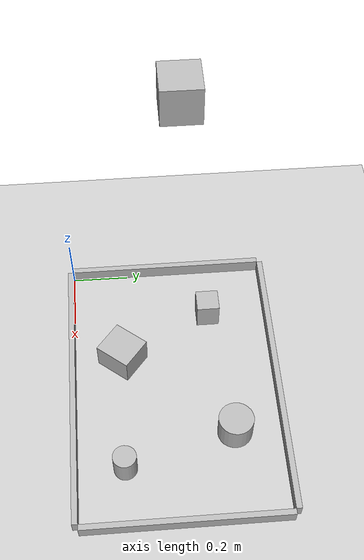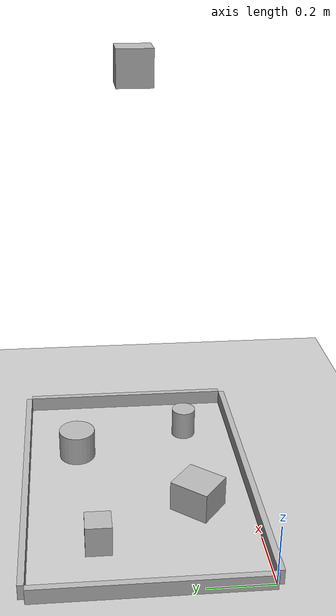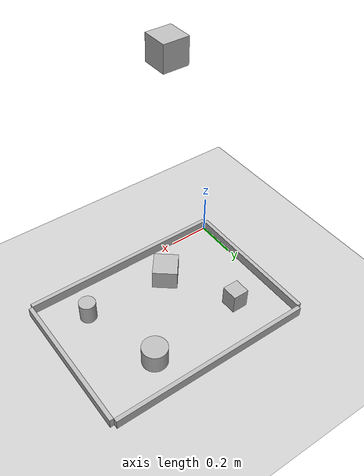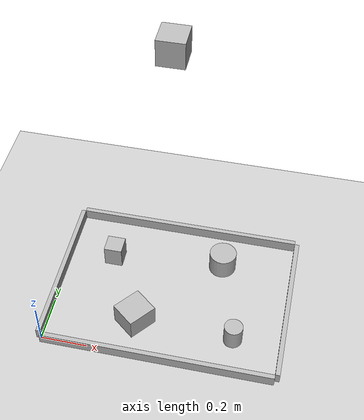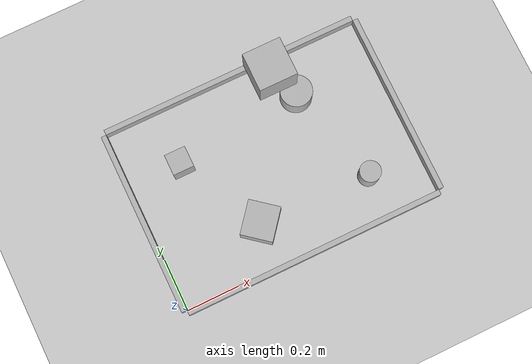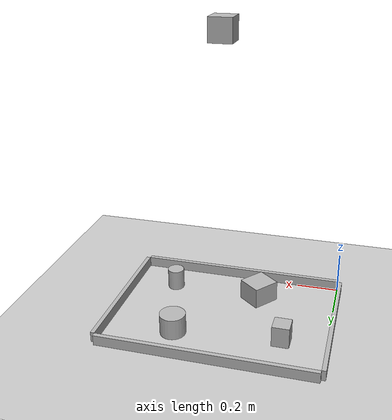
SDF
<?xml version="1.0" ?>
<sdf version="1.5">
    <world name="default">
        <scene>
            <ambient>0 0 0 1</ambient>
        </scene>
        <!-- A global light source -->
        <include>
            <uri>model://sun</uri>
        </include>

        <!-- A ground plane -->
        <include>
            <uri>model://ground_plane</uri>
        </include>

        <include>
            <uri>model://usb_cam</uri>
            <pose>0.55 0.31 1.38 -1.57 1.57 0</pose>
        </include>

        <gui fullscreen="0">
            <camera name = "user_camera">
                <pose>1.75 -0.70 1.12 0 0.6 2.39</pose>
                <view_controller>orbit</view_controller>
            </camera>
        </gui>

        <model name="left_wall">
            <pose>-0.01 0.35 0.025 0 0 0</pose>
            <static>true</static>
            <link name="link">
            <collision name="collision">
                <geometry>
                <box>
                    <size>0.02 0.7 0.05</size>
                </box>
                </geometry>
            </collision>
            <visual name="visual">
                <geometry>
                <box>
                    <size>0.02 0.7 0.05</size>
                </box>
                </geometry>
            </visual>
            </link>
        </model>

        <model name="right_wall">
            <pose>1.01 0.35 0.025 0 0 0</pose>
            <static>true</static>
            <link name="link">
            <collision name="collision">
                <geometry>
                <box>
                    <size>0.02 0.7 0.05</size>
                </box>
                </geometry>
            </collision>
            <visual name="visual">
                <geometry>
                <box>
                    <size>0.02 0.7 0.05</size>
                </box>
                </geometry>
            </visual>
            </link>
        </model>

        <model name="front_wall">
            <pose>0.5 -0.01 0.025 0 0 0</pose>
            <static>true</static>
            <link name="link">
            <collision name="collision">
                <geometry>
                <box>
                    <size>1 0.02 0.05</size>
                </box>
                </geometry>
            </collision>
            <visual name="visual">
                <geometry>
                <box>
                    <size>1 0.02 0.05</size>
                </box>
                </geometry>
            </visual>
            </link>
        </model>

        <model name="back_wall">
            <pose>0.5 0.71 0.025 0 0 0</pose>
            <static>true</static>
            <link name="link">
            <collision name="collision">
                <geometry>
                <box>
                    <size>1 0.02 0.05</size>
                </box>
                </geometry>
            </collision>
            <visual name="visual">
                <geometry>
                <box>
                    <size>1 0.02 0.05</size>
                </box>
                </geometry>
            </visual>
            </link>
        </model>

        <model name='box1'>
        <pose>0.20 0.49 0.05 0 -0 0</pose>
        <static>1</static>
        <link name='link'>
            <collision name='collision'>
            <geometry>
                <box>
                <size>0.08 0.08 0.1</size>
                </box>
            </geometry>
            </collision>
            <visual name='visual'>
            <geometry>
                <box>
                <size>0.08 0.08 0.1</size>
                </box>
            </geometry>
            </visual>
        </link>
        </model>
        <model name='cylinder1'>
        <pose>0.8 0.16 0.05 0 -0 0</pose>
        <static>1</static>
        <link name='link'>
            <collision name='collision'>
            <geometry>
                <cylinder>
                <radius>0.04</radius>
                <length>0.1</length>
                </cylinder>
            </geometry>
            </collision>
            <visual name='visual'>
            <geometry>
                <cylinder>
                <radius>0.04</radius>
                <length>0.1</length>
                </cylinder>
            </geometry>
            </visual>
        </link>
        </model>
        <model name='box2'>
        <pose>0.37 0.17 0.05 0 0 -0.68</pose>
        <static>1</static>
        <link name='link'>
            <collision name='collision'>
            <geometry>
                <box>
                <size>0.12 0.13 0.1</size>
                </box>
            </geometry>
            </collision>
            <visual name='visual'>
            <geometry>
                <box>
                <size>0.12 0.13 0.1</size>
                </box>
            </geometry>
            </visual>
        </link>
        </model>
        <model name='cylinder2'>
        <pose>0.69 0.54 0.05 0 0 0</pose>
        <static>1</static>
        <link name='link'>
            <collision name='collision'>
            <geometry>
                <cylinder>
                <radius>0.06</radius>
                <length>0.1</length>
                </cylinder>
            </geometry>
            </collision>
            <visual name='visual'>
            <geometry>
                <cylinder>
                <radius>0.06</radius>
                <length>0.1</length>
                </cylinder>
            </geometry>
            </visual>
        </link>
        </model>

    </world>
</sdf>

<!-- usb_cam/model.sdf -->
<sdf version="1.5">
  <model name="usb_cam">
    <link name="link">
      <pose>0.05 0.05 0.05 0 0 0</pose>
      <visual name="visual">
        <geometry>
          <box>
            <size>0.1 0.1 0.1</size>
          </box>
        </geometry>
      </visual>
      <sensor name="camera" type="camera">
        <camera>
          <horizontal_fov>1.047</horizontal_fov>
          <image>
            <width>1280</width>
            <height>720</height>
          </image>
          <clip>
            <near>0.1</near>
            <far>100</far>
          </clip>
        </camera>
        <always_on>1</always_on>
        <update_rate>30</update_rate>
        <visualize>true</visualize>
        <plugin name="camera_controller" filename="libgazebo_ros_camera.so">
          <alwaysOn>true</alwaysOn>
          <updateRate>0.0</updateRate>
          <imageTopicName>image_raw</imageTopicName>
          <cameraInfoTopicName>camera_info</cameraInfoTopicName>
          <frameName>camera_link_optical</frameName>
          <!-- setting hackBaseline to anything but 0.0 will cause a misalignment
                  between the gazebo sensor image and the frame it is supposed to
                  be attached to -->
          <hackBaseline>0.0</hackBaseline>
          <distortionK1>0.0</distortionK1>
          <distortionK2>0.0</distortionK2>
          <distortionK3>0.0</distortionK3>
          <distortionT1>0.0</distortionT1>
          <distortionT2>0.0</distortionT2>
          <CxPrime>0</CxPrime>
          <Cx>0.0</Cx>
          <Cy>0.0</Cy>
          <focalLength>0.0</focalLength>
        </plugin>
      </sensor>
      <gravity>0</gravity>
    </link>

  </model>
</sdf>
